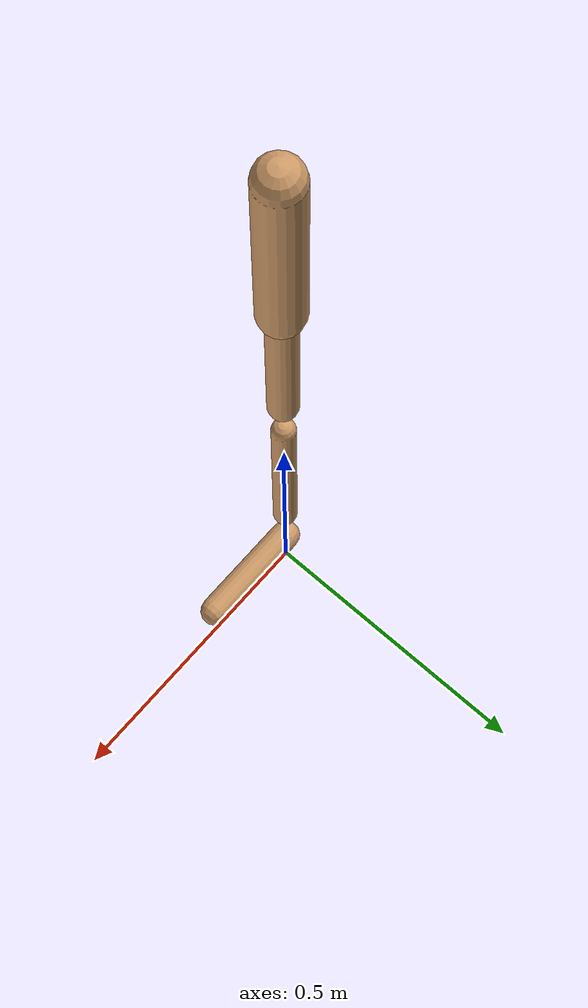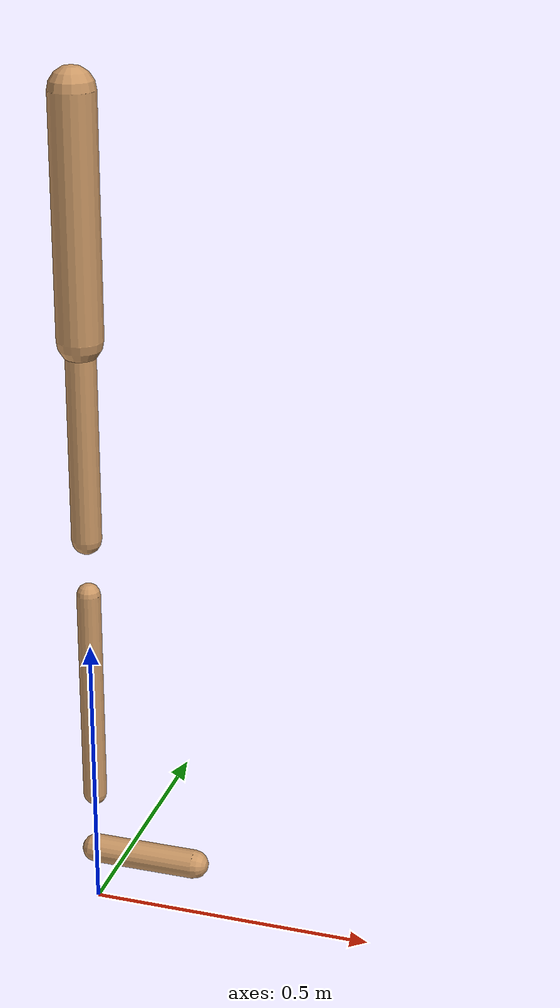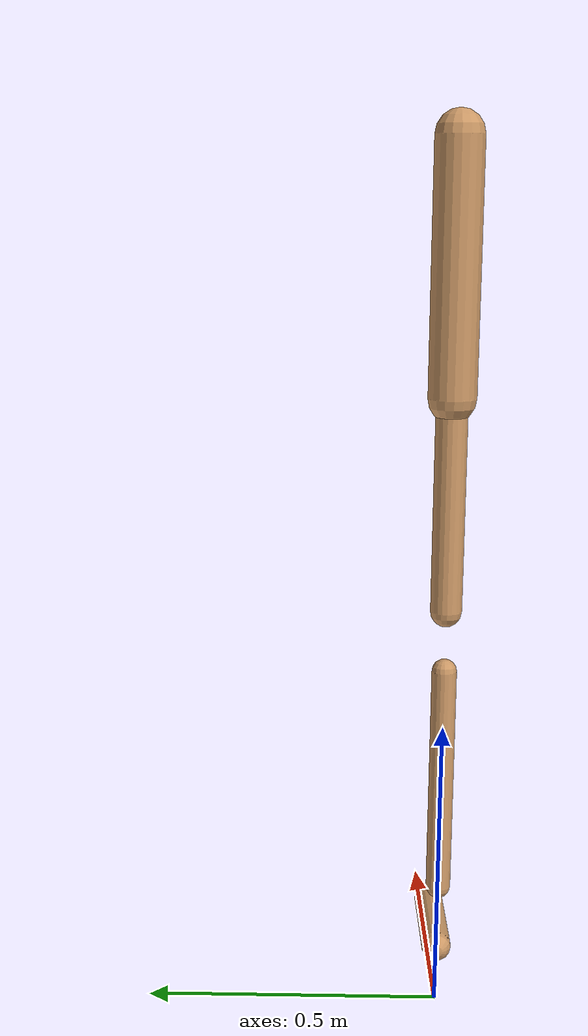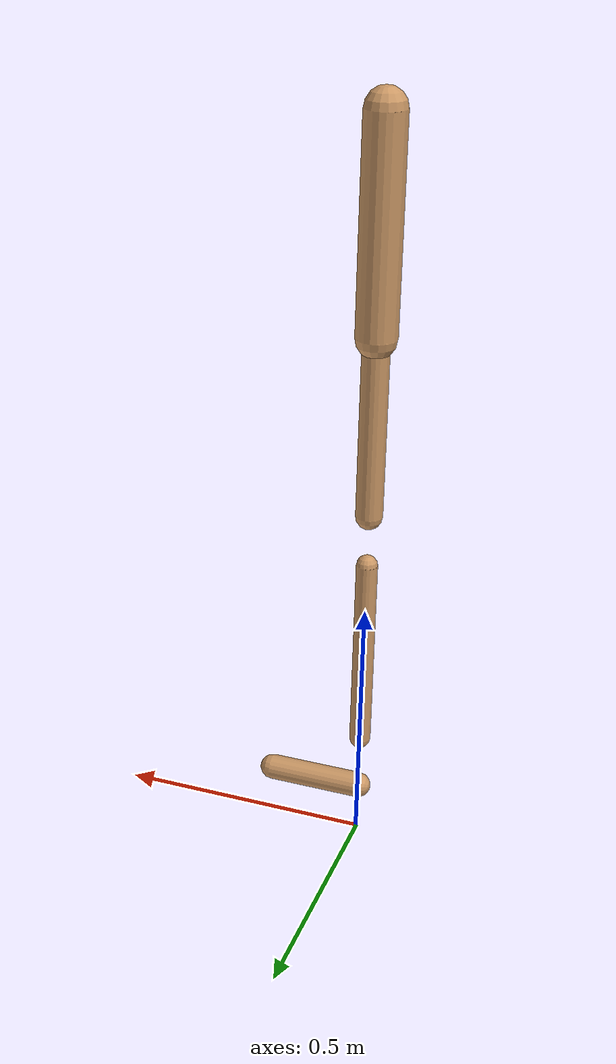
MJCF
<mujoco model="walker2d">
  <compiler angle="degree" coordinate="global" inertiafromgeom="true" />
  <default>
    <joint armature="0.01" damping=".1" limited="true" />
    <geom conaffinity="0" condim="3" contype="1" density="1000" friction="0.8 .1 .1" rgba="0.8 0.6 .4 1" />
  </default>
  <option integrator="RK4" timestep="0.002" />
  <worldbody>

    <body name="torso" pos="0 0 -0.21630464761699594">
      <joint armature="0" axis="1 0 0" damping="0" limited="false" name="ignorex" pos="0 0 0" stiffness="0" type="slide" />
      <joint armature="0" axis="0 0 1" damping="0" limited="false" name="ignorez" pos="0 0 0" ref="1.25" stiffness="0" type="slide" />
      <joint armature="0" axis="0 1 0" damping="0" limited="false" name="ignorey" pos="0 0 0" stiffness="0" type="hinge" />
      <geom fromto="0 0 1.45 0 0 1.05" name="torso_geom" size="0.038936118239748435" type="capsule" />
      <body name="thigh">
        <joint axis="0 -1 0" name="thigh_joint" pos="0 0 1.05" range="-150 0" type="hinge" />
        <geom fromto="0.0 0.0 1.05 0.0 0.0 0.7024600962396297" name="thigh_geom" size="0.02575902920200588" type="capsule" />
        <body name="leg" pos="0.0 0.0 0.1024600962396297">
          <joint axis="0 -1 0" name="leg_joint" pos="0 0 0.6" range="-150 0" type="hinge" />
          <geom fromto="0.0 0.0 0.6 0.0 0.0 0.2138445513773663" name="leg_geom" size="0.020607223361604702" type="capsule" />
          <body name="foot" pos="0.0 0.0 0.1138445513773663">
            <joint axis="0 -1 0" name="foot_joint" pos="0 0 0.1" range="-45 45" type="hinge" />
            <geom fromto="0.0 0.0 0.1 0.18375525784537164 0.0 0.1" name="foot_geom" size="0.025174780237122454" type="capsule" />
          </body>
        </body>
      </body>

      <body name="thigh_left">
        <joint axis="0 -1 0" name="thigh_left_joint" pos="0 0 1.05" range="-150 0" type="hinge" />
        <geom fromto="0.0 0.0 1.05 0.0 0.0 0.7024600962396297" name="thigh_left_geom" rgba=".7 .3 .6 1" size="0.02575902920200588" type="capsule" />
        <body name="leg_left" pos="0.0 0.0 0.1024600962396297">
          <joint axis="0 -1 0" name="leg_left_joint" pos="0 0 0.6" range="-150 0" type="hinge" />
          <geom fromto="0.0 0.0 0.6 0.0 0.0 0.2138445513773663" name="leg_left_geom" rgba=".7 .3 .6 1" size="0.020607223361604702" type="capsule" />
          <body name="foot_left" pos="0.0 0.0 0.1138445513773663">
            <joint axis="0 -1 0" name="foot_left_joint" pos="0 0 0.1" range="-45 45" type="hinge" />
            <geom fromto="0.0 0.0 0.1 0.18375525784537164 0.0 0.1" name="foot_left_geom" rgba=".7 .3 .6 1" size="0.025174780237122454" type="capsule" />
          </body>
        </body>
      </body>
    </body>
  </worldbody>
  <actuator>

    <motor ctrllimited="true" ctrlrange="-1.0 1.0" gear="100" joint="thigh_joint" />
    <motor ctrllimited="true" ctrlrange="-1.0 1.0" gear="100" joint="leg_joint" />
    <motor ctrllimited="true" ctrlrange="-1.0 1.0" gear="100" joint="foot_joint" />
    <motor ctrllimited="true" ctrlrange="-1.0 1.0" gear="100" joint="thigh_left_joint" />
    <motor ctrllimited="true" ctrlrange="-1.0 1.0" gear="100" joint="leg_left_joint" />
    <motor ctrllimited="true" ctrlrange="-1.0 1.0" gear="100" joint="foot_left_joint" />

  </actuator>
</mujoco>
